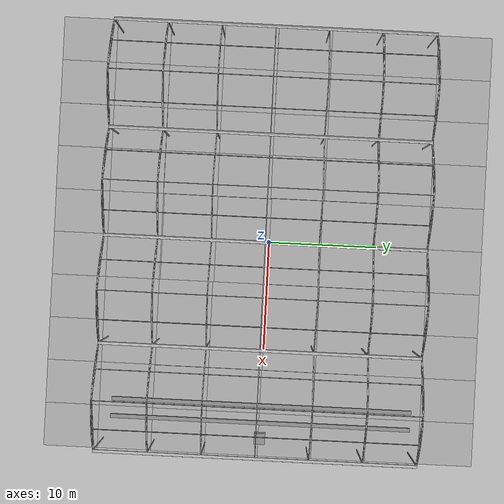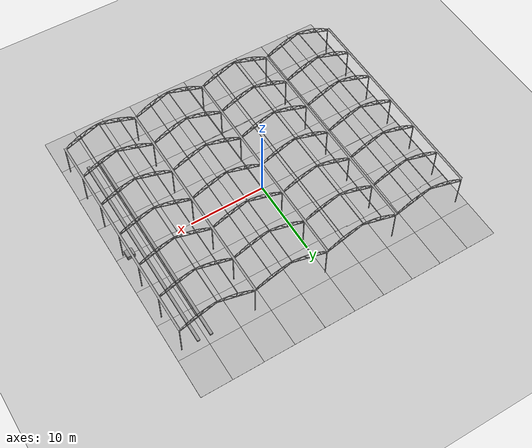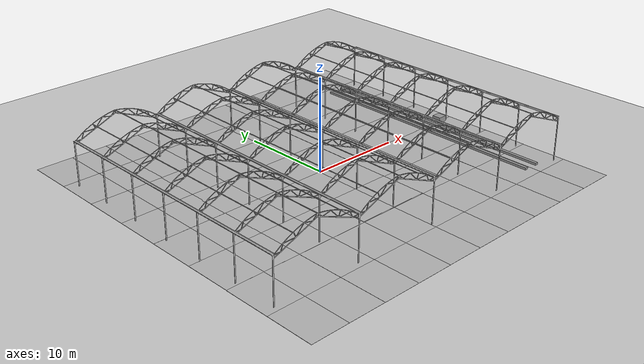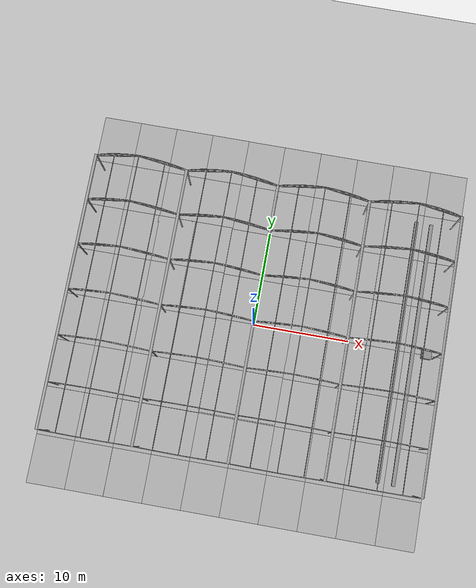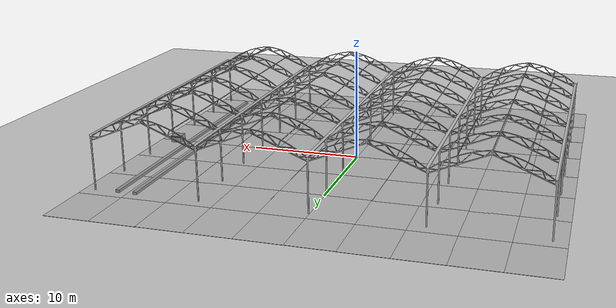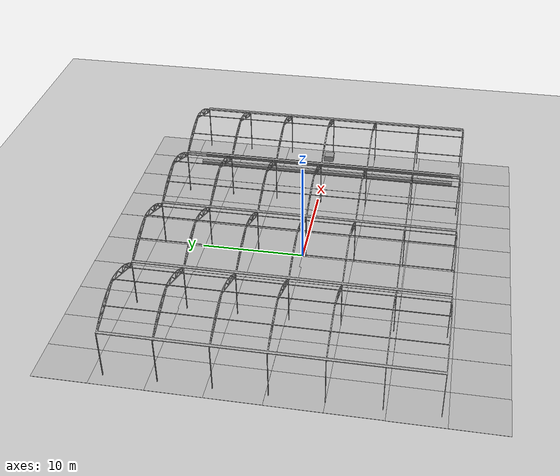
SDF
<sdf version="1.6">
 <world name="default">
  <light name="sun" type="directional">
   <pose>0 0 10 0 -0 0</pose>
   <diffuse>0.8 0.8 0.8 1</diffuse>
   <specular>0.2 0.2 0.2 1</specular>
   <attenuation>
    <range>1000</range>
    <constant>0.9</constant>
    <linear>0.01</linear>
    <quadratic>0.001</quadratic>
   </attenuation>
   <direction>-0.5 0.1 -0.9</direction>
  </light>
  <model name="ground_plane">
   <static>1</static>
   <link name="link">
    <collision name="collision">
     <geometry><plane><normal>0 0 1</normal><size>100 100</size></plane></geometry>
     <surface>
      <contact><collide_bitmask>65535</collide_bitmask></contact>
      <friction><ode><mu>100</mu><mu2>50</mu2></ode></friction>
     </surface>
    </collision>
    <visual name="visual">
     <cast_shadows>0</cast_shadows>
     <geometry><plane><normal>0 0 1</normal><size>100 100</size></plane></geometry>
     <material>
      <script><uri>file://media/materials/scripts/gazebo.material</uri><name>Gazebo/Grey</name></script>
     </material>
    </visual>
   </link>
  </model>
  <gravity>0 0 -9.8</gravity>
  <magnetic_field>6e-06 2.3e-05 -4.2e-05</magnetic_field>
  <atmosphere type="adiabatic"/>
  <physics name="default_physics" default="0" type="ode">
   <max_step_size>0.001</max_step_size>
   <real_time_factor>1</real_time_factor>
   <real_time_update_rate>1000</real_time_update_rate>
  </physics>
  <scene><ambient>0.4 0.4 0.4 1</ambient><background>0.7 0.7 0.7 1</background><shadows>1</shadows></scene>
  <audio><device>default</device></audio>
  <spherical_coordinates>
   <surface_model>EARTH_WGS84</surface_model>
   <latitude_deg>0</latitude_deg>
   <longitude_deg>0</longitude_deg>
   <elevation>0</elevation>
   <heading_deg>0</heading_deg>
  </spherical_coordinates>
  <model name="greenhouse">
   <static>1</static>
   <link name="link">
    <collision name="collision">
     <geometry>
      <mesh><scale>0.05 0.05 0.05</scale><uri>model://greenhouse/meshes/greenhouse.dae</uri></mesh>
     </geometry>
    </collision>
    <visual name="visual">
     <geometry>
      <mesh><scale>0.03 0.03 0.03</scale><uri>model://greenhouse/meshes/greenhouse.dae</uri></mesh>
     </geometry>
    </visual>
   </link>
   <pose>-24.6321 -23.8938 0 0 -0 0</pose>
  </model>
  <model name="mud_box_2">
   <static>1</static>
   <link name="link">
    <collision name="collision"><geometry><box><size>8 10 0.02</size></box></geometry></collision>
    <visual name="visual_1">
     <pose>-2 2.5 0 0 -0 0</pose>
     <cast_shadows>0</cast_shadows>
     <geometry><box><size>4 5 0.02</size></box></geometry>
     <material>
      <script>
       <uri>model://mud_box/materials/scripts</uri>
       <uri>model://mud_box/materials/textures</uri>
       <name>vrc/mud</name>
      </script>
     </material>
    </visual>
    <visual name="visual_2">
     <pose>2 2.5 0 0 -0 0</pose>
     <cast_shadows>0</cast_shadows>
     <geometry><box><size>4 5 0.02</size></box></geometry>
     <material>
      <script>
       <uri>model://mud_box/materials/scripts</uri>
       <uri>model://mud_box/materials/textures</uri>
       <name>vrc/mud</name>
      </script>
     </material>
    </visual>
    <visual name="visual_3">
     <pose>2 -2.5 0 0 -0 0</pose>
     <cast_shadows>0</cast_shadows>
     <geometry><box><size>4 5 0.02</size></box></geometry>
     <material>
      <script>
       <uri>model://mud_box/materials/scripts</uri>
       <uri>model://mud_box/materials/textures</uri>
       <name>vrc/mud</name>
      </script>
     </material>
    </visual>
    <visual name="visual_4">
     <pose>-2 -2.5 0 0 -0 0</pose>
     <cast_shadows>0</cast_shadows>
     <geometry><box><size>4 5 0.02</size></box></geometry>
     <material>
      <script>
       <uri>model://mud_box/materials/scripts</uri>
       <uri>model://mud_box/materials/textures</uri>
       <name>vrc/mud</name>
      </script>
     </material>
    </visual>
   </link>
   <pose>15.95 14.8768 0 0 -0 0</pose>
  </model>
  <model name="mud_box_2_clone">
   <static>1</static>
   <link name="link">
    <collision name="collision"><geometry><box><size>8 10 0.02</size></box></geometry></collision>
    <visual name="visual_1">
     <pose>-2 2.5 0 0 -0 0</pose>
     <cast_shadows>0</cast_shadows>
     <geometry><box><size>4 5 0.02</size></box></geometry>
     <material>
      <script>
       <uri>model://mud_box/materials/scripts</uri>
       <uri>model://mud_box/materials/textures</uri>
       <name>vrc/mud</name>
      </script>
     </material>
    </visual>
    <visual name="visual_2">
     <pose>2 2.5 0 0 -0 0</pose>
     <cast_shadows>0</cast_shadows>
     <geometry><box><size>4 5 0.02</size></box></geometry>
     <material>
      <script>
       <uri>model://mud_box/materials/scripts</uri>
       <uri>model://mud_box/materials/textures</uri>
       <name>vrc/mud</name>
      </script>
     </material>
    </visual>
    <visual name="visual_3">
     <pose>2 -2.5 0 0 -0 0</pose>
     <cast_shadows>0</cast_shadows>
     <geometry><box><size>4 5 0.02</size></box></geometry>
     <material>
      <script>
       <uri>model://mud_box/materials/scripts</uri>
       <uri>model://mud_box/materials/textures</uri>
       <name>vrc/mud</name>
      </script>
     </material>
    </visual>
    <visual name="visual_4">
     <pose>-2 -2.5 0 0 -0 0</pose>
     <cast_shadows>0</cast_shadows>
     <geometry><box><size>4 5 0.02</size></box></geometry>
     <material>
      <script>
       <uri>model://mud_box/materials/scripts</uri>
       <uri>model://mud_box/materials/textures</uri>
       <name>vrc/mud</name>
      </script>
     </material>
    </visual>
   </link>
   <pose>7.94862 14.8561 0 0 -0 0</pose>
  </model>
  <model name="mud_box_2_clone_0">
   <static>1</static>
   <link name="link">
    <collision name="collision"><geometry><box><size>8 10 0.02</size></box></geometry></collision>
    <visual name="visual_1">
     <pose>-2 2.5 0 0 -0 0</pose>
     <cast_shadows>0</cast_shadows>
     <geometry><box><size>4 5 0.02</size></box></geometry>
     <material>
      <script>
       <uri>model://mud_box/materials/scripts</uri>
       <uri>model://mud_box/materials/textures</uri>
       <name>vrc/mud</name>
      </script>
     </material>
    </visual>
    <visual name="visual_2">
     <pose>2 2.5 0 0 -0 0</pose>
     <cast_shadows>0</cast_shadows>
     <geometry><box><size>4 5 0.02</size></box></geometry>
     <material>
      <script>
       <uri>model://mud_box/materials/scripts</uri>
       <uri>model://mud_box/materials/textures</uri>
       <name>vrc/mud</name>
      </script>
     </material>
    </visual>
    <visual name="visual_3">
     <pose>2 -2.5 0 0 -0 0</pose>
     <cast_shadows>0</cast_shadows>
     <geometry><box><size>4 5 0.02</size></box></geometry>
     <material>
      <script>
       <uri>model://mud_box/materials/scripts</uri>
       <uri>model://mud_box/materials/textures</uri>
       <name>vrc/mud</name>
      </script>
     </material>
    </visual>
    <visual name="visual_4">
     <pose>-2 -2.5 0 0 -0 0</pose>
     <cast_shadows>0</cast_shadows>
     <geometry><box><size>4 5 0.02</size></box></geometry>
     <material>
      <script>
       <uri>model://mud_box/materials/scripts</uri>
       <uri>model://mud_box/materials/textures</uri>
       <name>vrc/mud</name>
      </script>
     </material>
    </visual>
   </link>
   <pose>-0.053733 14.862 0 0 -0 0</pose>
  </model>
  <model name="mud_box_2_clone_1">
   <static>1</static>
   <link name="link">
    <collision name="collision"><geometry><box><size>8 10 0.02</size></box></geometry></collision>
    <visual name="visual_1">
     <pose>-2 2.5 0 0 -0 0</pose>
     <cast_shadows>0</cast_shadows>
     <geometry><box><size>4 5 0.02</size></box></geometry>
     <material>
      <script>
       <uri>model://mud_box/materials/scripts</uri>
       <uri>model://mud_box/materials/textures</uri>
       <name>vrc/mud</name>
      </script>
     </material>
    </visual>
    <visual name="visual_2">
     <pose>2 2.5 0 0 -0 0</pose>
     <cast_shadows>0</cast_shadows>
     <geometry><box><size>4 5 0.02</size></box></geometry>
     <material>
      <script>
       <uri>model://mud_box/materials/scripts</uri>
       <uri>model://mud_box/materials/textures</uri>
       <name>vrc/mud</name>
      </script>
     </material>
    </visual>
    <visual name="visual_3">
     <pose>2 -2.5 0 0 -0 0</pose>
     <cast_shadows>0</cast_shadows>
     <geometry><box><size>4 5 0.02</size></box></geometry>
     <material>
      <script>
       <uri>model://mud_box/materials/scripts</uri>
       <uri>model://mud_box/materials/textures</uri>
       <name>vrc/mud</name>
      </script>
     </material>
    </visual>
    <visual name="visual_4">
     <pose>-2 -2.5 0 0 -0 0</pose>
     <cast_shadows>0</cast_shadows>
     <geometry><box><size>4 5 0.02</size></box></geometry>
     <material>
      <script>
       <uri>model://mud_box/materials/scripts</uri>
       <uri>model://mud_box/materials/textures</uri>
       <name>vrc/mud</name>
      </script>
     </material>
    </visual>
   </link>
   <pose>-8.0478 14.8839 0 0 -0 0</pose>
  </model>
  <model name="mud_box_2_clone_2">
   <static>1</static>
   <link name="link">
    <collision name="collision"><geometry><box><size>8 10 0.02</size></box></geometry></collision>
    <visual name="visual_1">
     <pose>-2 2.5 0 0 -0 0</pose>
     <cast_shadows>0</cast_shadows>
     <geometry><box><size>4 5 0.02</size></box></geometry>
     <material>
      <script>
       <uri>model://mud_box/materials/scripts</uri>
       <uri>model://mud_box/materials/textures</uri>
       <name>vrc/mud</name>
      </script>
     </material>
    </visual>
    <visual name="visual_2">
     <pose>2 2.5 0 0 -0 0</pose>
     <cast_shadows>0</cast_shadows>
     <geometry><box><size>4 5 0.02</size></box></geometry>
     <material>
      <script>
       <uri>model://mud_box/materials/scripts</uri>
       <uri>model://mud_box/materials/textures</uri>
       <name>vrc/mud</name>
      </script>
     </material>
    </visual>
    <visual name="visual_3">
     <pose>2 -2.5 0 0 -0 0</pose>
     <cast_shadows>0</cast_shadows>
     <geometry><box><size>4 5 0.02</size></box></geometry>
     <material>
      <script>
       <uri>model://mud_box/materials/scripts</uri>
       <uri>model://mud_box/materials/textures</uri>
       <name>vrc/mud</name>
      </script>
     </material>
    </visual>
    <visual name="visual_4">
     <pose>-2 -2.5 0 0 -0 0</pose>
     <cast_shadows>0</cast_shadows>
     <geometry><box><size>4 5 0.02</size></box></geometry>
     <material>
      <script>
       <uri>model://mud_box/materials/scripts</uri>
       <uri>model://mud_box/materials/textures</uri>
       <name>vrc/mud</name>
      </script>
     </material>
    </visual>
   </link>
   <pose>-16.0172 14.8764 0 0 -0 0</pose>
  </model>
  <model name="mud_box_2_clone_3">
   <static>1</static>
   <link name="link">
    <collision name="collision"><geometry><box><size>8 10 0.02</size></box></geometry></collision>
    <visual name="visual_1">
     <pose>-2 2.5 0 0 -0 0</pose>
     <cast_shadows>0</cast_shadows>
     <geometry><box><size>4 5 0.02</size></box></geometry>
     <material>
      <script>
       <uri>model://mud_box/materials/scripts</uri>
       <uri>model://mud_box/materials/textures</uri>
       <name>vrc/mud</name>
      </script>
     </material>
    </visual>
    <visual name="visual_2">
     <pose>2 2.5 0 0 -0 0</pose>
     <cast_shadows>0</cast_shadows>
     <geometry><box><size>4 5 0.02</size></box></geometry>
     <material>
      <script>
       <uri>model://mud_box/materials/scripts</uri>
       <uri>model://mud_box/materials/textures</uri>
       <name>vrc/mud</name>
      </script>
     </material>
    </visual>
    <visual name="visual_3">
     <pose>2 -2.5 0 0 -0 0</pose>
     <cast_shadows>0</cast_shadows>
     <geometry><box><size>4 5 0.02</size></box></geometry>
     <material>
      <script>
       <uri>model://mud_box/materials/scripts</uri>
       <uri>model://mud_box/materials/textures</uri>
       <name>vrc/mud</name>
      </script>
     </material>
    </visual>
    <visual name="visual_4">
     <pose>-2 -2.5 0 0 -0 0</pose>
     <cast_shadows>0</cast_shadows>
     <geometry><box><size>4 5 0.02</size></box></geometry>
     <material>
      <script>
       <uri>model://mud_box/materials/scripts</uri>
       <uri>model://mud_box/materials/textures</uri>
       <name>vrc/mud</name>
      </script>
     </material>
    </visual>
   </link>
   <pose>15.951 4.89846 0 0 -0 0</pose>
  </model>
  <model name="mud_box_2_clone_4">
   <static>1</static>
   <link name="link">
    <collision name="collision"><geometry><box><size>8 10 0.02</size></box></geometry></collision>
    <visual name="visual_1">
     <pose>-2 2.5 0 0 -0 0</pose>
     <cast_shadows>0</cast_shadows>
     <geometry><box><size>4 5 0.02</size></box></geometry>
     <material>
      <script>
       <uri>model://mud_box/materials/scripts</uri>
       <uri>model://mud_box/materials/textures</uri>
       <name>vrc/mud</name>
      </script>
     </material>
    </visual>
    <visual name="visual_2">
     <pose>2 2.5 0 0 -0 0</pose>
     <cast_shadows>0</cast_shadows>
     <geometry><box><size>4 5 0.02</size></box></geometry>
     <material>
      <script>
       <uri>model://mud_box/materials/scripts</uri>
       <uri>model://mud_box/materials/textures</uri>
       <name>vrc/mud</name>
      </script>
     </material>
    </visual>
    <visual name="visual_3">
     <pose>2 -2.5 0 0 -0 0</pose>
     <cast_shadows>0</cast_shadows>
     <geometry><box><size>4 5 0.02</size></box></geometry>
     <material>
      <script>
       <uri>model://mud_box/materials/scripts</uri>
       <uri>model://mud_box/materials/textures</uri>
       <name>vrc/mud</name>
      </script>
     </material>
    </visual>
    <visual name="visual_4">
     <pose>-2 -2.5 0 0 -0 0</pose>
     <cast_shadows>0</cast_shadows>
     <geometry><box><size>4 5 0.02</size></box></geometry>
     <material>
      <script>
       <uri>model://mud_box/materials/scripts</uri>
       <uri>model://mud_box/materials/textures</uri>
       <name>vrc/mud</name>
      </script>
     </material>
    </visual>
   </link>
   <pose>15.9437 -5.04402 0 0 -0 0</pose>
  </model>
  <model name="mud_box_2_clone_5">
   <static>1</static>
   <link name="link">
    <collision name="collision"><geometry><box><size>8 10 0.02</size></box></geometry></collision>
    <visual name="visual_1">
     <pose>-2 2.5 0 0 -0 0</pose>
     <cast_shadows>0</cast_shadows>
     <geometry><box><size>4 5 0.02</size></box></geometry>
     <material>
      <script>
       <uri>model://mud_box/materials/scripts</uri>
       <uri>model://mud_box/materials/textures</uri>
       <name>vrc/mud</name>
      </script>
     </material>
    </visual>
    <visual name="visual_2">
     <pose>2 2.5 0 0 -0 0</pose>
     <cast_shadows>0</cast_shadows>
     <geometry><box><size>4 5 0.02</size></box></geometry>
     <material>
      <script>
       <uri>model://mud_box/materials/scripts</uri>
       <uri>model://mud_box/materials/textures</uri>
       <name>vrc/mud</name>
      </script>
     </material>
    </visual>
    <visual name="visual_3">
     <pose>2 -2.5 0 0 -0 0</pose>
     <cast_shadows>0</cast_shadows>
     <geometry><box><size>4 5 0.02</size></box></geometry>
     <material>
      <script>
       <uri>model://mud_box/materials/scripts</uri>
       <uri>model://mud_box/materials/textures</uri>
       <name>vrc/mud</name>
      </script>
     </material>
    </visual>
    <visual name="visual_4">
     <pose>-2 -2.5 0 0 -0 0</pose>
     <cast_shadows>0</cast_shadows>
     <geometry><box><size>4 5 0.02</size></box></geometry>
     <material>
      <script>
       <uri>model://mud_box/materials/scripts</uri>
       <uri>model://mud_box/materials/textures</uri>
       <name>vrc/mud</name>
      </script>
     </material>
    </visual>
   </link>
   <pose>15.9026 -15.0305 0 0 -0 0</pose>
  </model>
  <model name="mud_box_2_clone_6">
   <static>1</static>
   <link name="link">
    <collision name="collision"><geometry><box><size>8 10 0.02</size></box></geometry></collision>
    <visual name="visual_1">
     <pose>-2 2.5 0 0 -0 0</pose>
     <cast_shadows>0</cast_shadows>
     <geometry><box><size>4 5 0.02</size></box></geometry>
     <material>
      <script>
       <uri>model://mud_box/materials/scripts</uri>
       <uri>model://mud_box/materials/textures</uri>
       <name>vrc/mud</name>
      </script>
     </material>
    </visual>
    <visual name="visual_2">
     <pose>2 2.5 0 0 -0 0</pose>
     <cast_shadows>0</cast_shadows>
     <geometry><box><size>4 5 0.02</size></box></geometry>
     <material>
      <script>
       <uri>model://mud_box/materials/scripts</uri>
       <uri>model://mud_box/materials/textures</uri>
       <name>vrc/mud</name>
      </script>
     </material>
    </visual>
    <visual name="visual_3">
     <pose>2 -2.5 0 0 -0 0</pose>
     <cast_shadows>0</cast_shadows>
     <geometry><box><size>4 5 0.02</size></box></geometry>
     <material>
      <script>
       <uri>model://mud_box/materials/scripts</uri>
       <uri>model://mud_box/materials/textures</uri>
       <name>vrc/mud</name>
      </script>
     </material>
    </visual>
    <visual name="visual_4">
     <pose>-2 -2.5 0 0 -0 0</pose>
     <cast_shadows>0</cast_shadows>
     <geometry><box><size>4 5 0.02</size></box></geometry>
     <material>
      <script>
       <uri>model://mud_box/materials/scripts</uri>
       <uri>model://mud_box/materials/textures</uri>
       <name>vrc/mud</name>
      </script>
     </material>
    </visual>
   </link>
   <pose>7.92837 -15.034 0 0 -0 0</pose>
  </model>
  <model name="mud_box_2_clone_7">
   <static>1</static>
   <link name="link">
    <collision name="collision"><geometry><box><size>8 10 0.02</size></box></geometry></collision>
    <visual name="visual_1">
     <pose>-2 2.5 0 0 -0 0</pose>
     <cast_shadows>0</cast_shadows>
     <geometry><box><size>4 5 0.02</size></box></geometry>
     <material>
      <script>
       <uri>model://mud_box/materials/scripts</uri>
       <uri>model://mud_box/materials/textures</uri>
       <name>vrc/mud</name>
      </script>
     </material>
    </visual>
    <visual name="visual_2">
     <pose>2 2.5 0 0 -0 0</pose>
     <cast_shadows>0</cast_shadows>
     <geometry><box><size>4 5 0.02</size></box></geometry>
     <material>
      <script>
       <uri>model://mud_box/materials/scripts</uri>
       <uri>model://mud_box/materials/textures</uri>
       <name>vrc/mud</name>
      </script>
     </material>
    </visual>
    <visual name="visual_3">
     <pose>2 -2.5 0 0 -0 0</pose>
     <cast_shadows>0</cast_shadows>
     <geometry><box><size>4 5 0.02</size></box></geometry>
     <material>
      <script>
       <uri>model://mud_box/materials/scripts</uri>
       <uri>model://mud_box/materials/textures</uri>
       <name>vrc/mud</name>
      </script>
     </material>
    </visual>
    <visual name="visual_4">
     <pose>-2 -2.5 0 0 -0 0</pose>
     <cast_shadows>0</cast_shadows>
     <geometry><box><size>4 5 0.02</size></box></geometry>
     <material>
      <script>
       <uri>model://mud_box/materials/scripts</uri>
       <uri>model://mud_box/materials/textures</uri>
       <name>vrc/mud</name>
      </script>
     </material>
    </visual>
   </link>
   <pose>-0.060925 -15.032 0 0 -0 0</pose>
  </model>
  <model name="mud_box_2_clone_8">
   <static>1</static>
   <link name="link">
    <collision name="collision"><geometry><box><size>8 10 0.02</size></box></geometry></collision>
    <visual name="visual_1">
     <pose>-2 2.5 0 0 -0 0</pose>
     <cast_shadows>0</cast_shadows>
     <geometry><box><size>4 5 0.02</size></box></geometry>
     <material>
      <script>
       <uri>model://mud_box/materials/scripts</uri>
       <uri>model://mud_box/materials/textures</uri>
       <name>vrc/mud</name>
      </script>
     </material>
    </visual>
    <visual name="visual_2">
     <pose>2 2.5 0 0 -0 0</pose>
     <cast_shadows>0</cast_shadows>
     <geometry><box><size>4 5 0.02</size></box></geometry>
     <material>
      <script>
       <uri>model://mud_box/materials/scripts</uri>
       <uri>model://mud_box/materials/textures</uri>
       <name>vrc/mud</name>
      </script>
     </material>
    </visual>
    <visual name="visual_3">
     <pose>2 -2.5 0 0 -0 0</pose>
     <cast_shadows>0</cast_shadows>
     <geometry><box><size>4 5 0.02</size></box></geometry>
     <material>
      <script>
       <uri>model://mud_box/materials/scripts</uri>
       <uri>model://mud_box/materials/textures</uri>
       <name>vrc/mud</name>
      </script>
     </material>
    </visual>
    <visual name="visual_4">
     <pose>-2 -2.5 0 0 -0 0</pose>
     <cast_shadows>0</cast_shadows>
     <geometry><box><size>4 5 0.02</size></box></geometry>
     <material>
      <script>
       <uri>model://mud_box/materials/scripts</uri>
       <uri>model://mud_box/materials/textures</uri>
       <name>vrc/mud</name>
      </script>
     </material>
    </visual>
   </link>
   <pose>-8.05527 -15.0417 0 0 -0 0</pose>
  </model>
  <model name="mud_box_2_clone_9">
   <static>1</static>
   <link name="link">
    <collision name="collision"><geometry><box><size>8 10 0.02</size></box></geometry></collision>
    <visual name="visual_1">
     <pose>-2 2.5 0 0 -0 0</pose>
     <cast_shadows>0</cast_shadows>
     <geometry><box><size>4 5 0.02</size></box></geometry>
     <material>
      <script>
       <uri>model://mud_box/materials/scripts</uri>
       <uri>model://mud_box/materials/textures</uri>
       <name>vrc/mud</name>
      </script>
     </material>
    </visual>
    <visual name="visual_2">
     <pose>2 2.5 0 0 -0 0</pose>
     <cast_shadows>0</cast_shadows>
     <geometry><box><size>4 5 0.02</size></box></geometry>
     <material>
      <script>
       <uri>model://mud_box/materials/scripts</uri>
       <uri>model://mud_box/materials/textures</uri>
       <name>vrc/mud</name>
      </script>
     </material>
    </visual>
    <visual name="visual_3">
     <pose>2 -2.5 0 0 -0 0</pose>
     <cast_shadows>0</cast_shadows>
     <geometry><box><size>4 5 0.02</size></box></geometry>
     <material>
      <script>
       <uri>model://mud_box/materials/scripts</uri>
       <uri>model://mud_box/materials/textures</uri>
       <name>vrc/mud</name>
      </script>
     </material>
    </visual>
    <visual name="visual_4">
     <pose>-2 -2.5 0 0 -0 0</pose>
     <cast_shadows>0</cast_shadows>
     <geometry><box><size>4 5 0.02</size></box></geometry>
     <material>
      <script>
       <uri>model://mud_box/materials/scripts</uri>
       <uri>model://mud_box/materials/textures</uri>
       <name>vrc/mud</name>
      </script>
     </material>
    </visual>
   </link>
   <pose>-16.0602 -15.033 0 0 -0 0</pose>
  </model>
  <model name="mud_box_2_clone_10">
   <static>1</static>
   <link name="link">
    <collision name="collision"><geometry><box><size>8 10 0.02</size></box></geometry></collision>
    <visual name="visual_1">
     <pose>-2 2.5 0 0 -0 0</pose>
     <cast_shadows>0</cast_shadows>
     <geometry><box><size>4 5 0.02</size></box></geometry>
     <material>
      <script>
       <uri>model://mud_box/materials/scripts</uri>
       <uri>model://mud_box/materials/textures</uri>
       <name>vrc/mud</name>
      </script>
     </material>
    </visual>
    <visual name="visual_2">
     <pose>2 2.5 0 0 -0 0</pose>
     <cast_shadows>0</cast_shadows>
     <geometry><box><size>4 5 0.02</size></box></geometry>
     <material>
      <script>
       <uri>model://mud_box/materials/scripts</uri>
       <uri>model://mud_box/materials/textures</uri>
       <name>vrc/mud</name>
      </script>
     </material>
    </visual>
    <visual name="visual_3">
     <pose>2 -2.5 0 0 -0 0</pose>
     <cast_shadows>0</cast_shadows>
     <geometry><box><size>4 5 0.02</size></box></geometry>
     <material>
      <script>
       <uri>model://mud_box/materials/scripts</uri>
       <uri>model://mud_box/materials/textures</uri>
       <name>vrc/mud</name>
      </script>
     </material>
    </visual>
    <visual name="visual_4">
     <pose>-2 -2.5 0 0 -0 0</pose>
     <cast_shadows>0</cast_shadows>
     <geometry><box><size>4 5 0.02</size></box></geometry>
     <material>
      <script>
       <uri>model://mud_box/materials/scripts</uri>
       <uri>model://mud_box/materials/textures</uri>
       <name>vrc/mud</name>
      </script>
     </material>
    </visual>
   </link>
   <pose>-16.037 -5.02979 0 0 -0 0</pose>
  </model>
  <model name="mud_box_2_clone_11">
   <static>1</static>
   <link name="link">
    <collision name="collision"><geometry><box><size>8 10 0.02</size></box></geometry></collision>
    <visual name="visual_1">
     <pose>-2 2.5 0 0 -0 0</pose>
     <cast_shadows>0</cast_shadows>
     <geometry><box><size>4 5 0.02</size></box></geometry>
     <material>
      <script>
       <uri>model://mud_box/materials/scripts</uri>
       <uri>model://mud_box/materials/textures</uri>
       <name>vrc/mud</name>
      </script>
     </material>
    </visual>
    <visual name="visual_2">
     <pose>2 2.5 0 0 -0 0</pose>
     <cast_shadows>0</cast_shadows>
     <geometry><box><size>4 5 0.02</size></box></geometry>
     <material>
      <script>
       <uri>model://mud_box/materials/scripts</uri>
       <uri>model://mud_box/materials/textures</uri>
       <name>vrc/mud</name>
      </script>
     </material>
    </visual>
    <visual name="visual_3">
     <pose>2 -2.5 0 0 -0 0</pose>
     <cast_shadows>0</cast_shadows>
     <geometry><box><size>4 5 0.02</size></box></geometry>
     <material>
      <script>
       <uri>model://mud_box/materials/scripts</uri>
       <uri>model://mud_box/materials/textures</uri>
       <name>vrc/mud</name>
      </script>
     </material>
    </visual>
    <visual name="visual_4">
     <pose>-2 -2.5 0 0 -0 0</pose>
     <cast_shadows>0</cast_shadows>
     <geometry><box><size>4 5 0.02</size></box></geometry>
     <material>
      <script>
       <uri>model://mud_box/materials/scripts</uri>
       <uri>model://mud_box/materials/textures</uri>
       <name>vrc/mud</name>
      </script>
     </material>
    </visual>
   </link>
   <pose>-16.0272 4.97532 0 0 -0 0</pose>
  </model>
  <model name="mud_box_2_clone_12">
   <static>1</static>
   <link name="link">
    <collision name="collision"><geometry><box><size>8 10 0.02</size></box></geometry></collision>
    <visual name="visual_1">
     <pose>-2 2.5 0 0 -0 0</pose>
     <cast_shadows>0</cast_shadows>
     <geometry><box><size>4 5 0.02</size></box></geometry>
     <material>
      <script>
       <uri>model://mud_box/materials/scripts</uri>
       <uri>model://mud_box/materials/textures</uri>
       <name>vrc/mud</name>
      </script>
     </material>
    </visual>
    <visual name="visual_2">
     <pose>2 2.5 0 0 -0 0</pose>
     <cast_shadows>0</cast_shadows>
     <geometry><box><size>4 5 0.02</size></box></geometry>
     <material>
      <script>
       <uri>model://mud_box/materials/scripts</uri>
       <uri>model://mud_box/materials/textures</uri>
       <name>vrc/mud</name>
      </script>
     </material>
    </visual>
    <visual name="visual_3">
     <pose>2 -2.5 0 0 -0 0</pose>
     <cast_shadows>0</cast_shadows>
     <geometry><box><size>4 5 0.02</size></box></geometry>
     <material>
      <script>
       <uri>model://mud_box/materials/scripts</uri>
       <uri>model://mud_box/materials/textures</uri>
       <name>vrc/mud</name>
      </script>
     </material>
    </visual>
    <visual name="visual_4">
     <pose>-2 -2.5 0 0 -0 0</pose>
     <cast_shadows>0</cast_shadows>
     <geometry><box><size>4 5 0.02</size></box></geometry>
     <material>
      <script>
       <uri>model://mud_box/materials/scripts</uri>
       <uri>model://mud_box/materials/textures</uri>
       <name>vrc/mud</name>
      </script>
     </material>
    </visual>
   </link>
   <pose>-8.1226 4.98139 0 0 -0 0</pose>
  </model>
  <model name="mud_box_2_clone_13">
   <static>1</static>
   <link name="link">
    <collision name="collision"><geometry><box><size>8 10 0.02</size></box></geometry></collision>
    <visual name="visual_1">
     <pose>-2 2.5 0 0 -0 0</pose>
     <cast_shadows>0</cast_shadows>
     <geometry><box><size>4 5 0.02</size></box></geometry>
     <material>
      <script>
       <uri>model://mud_box/materials/scripts</uri>
       <uri>model://mud_box/materials/textures</uri>
       <name>vrc/mud</name>
      </script>
     </material>
    </visual>
    <visual name="visual_2">
     <pose>2 2.5 0 0 -0 0</pose>
     <cast_shadows>0</cast_shadows>
     <geometry><box><size>4 5 0.02</size></box></geometry>
     <material>
      <script>
       <uri>model://mud_box/materials/scripts</uri>
       <uri>model://mud_box/materials/textures</uri>
       <name>vrc/mud</name>
      </script>
     </material>
    </visual>
    <visual name="visual_3">
     <pose>2 -2.5 0 0 -0 0</pose>
     <cast_shadows>0</cast_shadows>
     <geometry><box><size>4 5 0.02</size></box></geometry>
     <material>
      <script>
       <uri>model://mud_box/materials/scripts</uri>
       <uri>model://mud_box/materials/textures</uri>
       <name>vrc/mud</name>
      </script>
     </material>
    </visual>
    <visual name="visual_4">
     <pose>-2 -2.5 0 0 -0 0</pose>
     <cast_shadows>0</cast_shadows>
     <geometry><box><size>4 5 0.02</size></box></geometry>
     <material>
      <script>
       <uri>model://mud_box/materials/scripts</uri>
       <uri>model://mud_box/materials/textures</uri>
       <name>vrc/mud</name>
      </script>
     </material>
    </visual>
   </link>
   <pose>-8.07337 -5.01851 0 0 -0 0</pose>
  </model>
  <model name="mud_box_2_clone_14">
   <static>1</static>
   <link name="link">
    <collision name="collision"><geometry><box><size>8 10 0.02</size></box></geometry></collision>
    <visual name="visual_1">
     <pose>-2 2.5 0 0 -0 0</pose>
     <cast_shadows>0</cast_shadows>
     <geometry><box><size>4 5 0.02</size></box></geometry>
     <material>
      <script>
       <uri>model://mud_box/materials/scripts</uri>
       <uri>model://mud_box/materials/textures</uri>
       <name>vrc/mud</name>
      </script>
     </material>
    </visual>
    <visual name="visual_2">
     <pose>2 2.5 0 0 -0 0</pose>
     <cast_shadows>0</cast_shadows>
     <geometry><box><size>4 5 0.02</size></box></geometry>
     <material>
      <script>
       <uri>model://mud_box/materials/scripts</uri>
       <uri>model://mud_box/materials/textures</uri>
       <name>vrc/mud</name>
      </script>
     </material>
    </visual>
    <visual name="visual_3">
     <pose>2 -2.5 0 0 -0 0</pose>
     <cast_shadows>0</cast_shadows>
     <geometry><box><size>4 5 0.02</size></box></geometry>
     <material>
      <script>
       <uri>model://mud_box/materials/scripts</uri>
       <uri>model://mud_box/materials/textures</uri>
       <name>vrc/mud</name>
      </script>
     </material>
    </visual>
    <visual name="visual_4">
     <pose>-2 -2.5 0 0 -0 0</pose>
     <cast_shadows>0</cast_shadows>
     <geometry><box><size>4 5 0.02</size></box></geometry>
     <material>
      <script>
       <uri>model://mud_box/materials/scripts</uri>
       <uri>model://mud_box/materials/textures</uri>
       <name>vrc/mud</name>
      </script>
     </material>
    </visual>
   </link>
   <pose>7.92131 -5.03606 0 0 -0 0</pose>
  </model>
  <model name="mud_box_2_clone_15">
   <static>1</static>
   <link name="link">
    <collision name="collision"><geometry><box><size>8 10 0.02</size></box></geometry></collision>
    <visual name="visual_1">
     <pose>-2 2.5 0 0 -0 0</pose>
     <cast_shadows>0</cast_shadows>
     <geometry><box><size>4 5 0.02</size></box></geometry>
     <material>
      <script>
       <uri>model://mud_box/materials/scripts</uri>
       <uri>model://mud_box/materials/textures</uri>
       <name>vrc/mud</name>
      </script>
     </material>
    </visual>
    <visual name="visual_2">
     <pose>2 2.5 0 0 -0 0</pose>
     <cast_shadows>0</cast_shadows>
     <geometry><box><size>4 5 0.02</size></box></geometry>
     <material>
      <script>
       <uri>model://mud_box/materials/scripts</uri>
       <uri>model://mud_box/materials/textures</uri>
       <name>vrc/mud</name>
      </script>
     </material>
    </visual>
    <visual name="visual_3">
     <pose>2 -2.5 0 0 -0 0</pose>
     <cast_shadows>0</cast_shadows>
     <geometry><box><size>4 5 0.02</size></box></geometry>
     <material>
      <script>
       <uri>model://mud_box/materials/scripts</uri>
       <uri>model://mud_box/materials/textures</uri>
       <name>vrc/mud</name>
      </script>
     </material>
    </visual>
    <visual name="visual_4">
     <pose>-2 -2.5 0 0 -0 0</pose>
     <cast_shadows>0</cast_shadows>
     <geometry><box><size>4 5 0.02</size></box></geometry>
     <material>
      <script>
       <uri>model://mud_box/materials/scripts</uri>
       <uri>model://mud_box/materials/textures</uri>
       <name>vrc/mud</name>
      </script>
     </material>
    </visual>
   </link>
   <pose>-0.044632 -4.93319 0 0 -0 0</pose>
  </model>
  <model name="mud_box_2_clone_16">
   <static>1</static>
   <link name="link">
    <collision name="collision"><geometry><box><size>8 10 0.02</size></box></geometry></collision>
    <visual name="visual_1">
     <pose>-2 2.5 0 0 -0 0</pose>
     <cast_shadows>0</cast_shadows>
     <geometry><box><size>4 5 0.02</size></box></geometry>
     <material>
      <script>
       <uri>model://mud_box/materials/scripts</uri>
       <uri>model://mud_box/materials/textures</uri>
       <name>vrc/mud</name>
      </script>
     </material>
    </visual>
    <visual name="visual_2">
     <pose>2 2.5 0 0 -0 0</pose>
     <cast_shadows>0</cast_shadows>
     <geometry><box><size>4 5 0.02</size></box></geometry>
     <material>
      <script>
       <uri>model://mud_box/materials/scripts</uri>
       <uri>model://mud_box/materials/textures</uri>
       <name>vrc/mud</name>
      </script>
     </material>
    </visual>
    <visual name="visual_3">
     <pose>2 -2.5 0 0 -0 0</pose>
     <cast_shadows>0</cast_shadows>
     <geometry><box><size>4 5 0.02</size></box></geometry>
     <material>
      <script>
       <uri>model://mud_box/materials/scripts</uri>
       <uri>model://mud_box/materials/textures</uri>
       <name>vrc/mud</name>
      </script>
     </material>
    </visual>
    <visual name="visual_4">
     <pose>-2 -2.5 0 0 -0 0</pose>
     <cast_shadows>0</cast_shadows>
     <geometry><box><size>4 5 0.02</size></box></geometry>
     <material>
      <script>
       <uri>model://mud_box/materials/scripts</uri>
       <uri>model://mud_box/materials/textures</uri>
       <name>vrc/mud</name>
      </script>
     </material>
    </visual>
   </link>
   <pose>7.93489 4.92736 0 0 -0 0</pose>
  </model>
  <model name="mud_box_2_clone_17">
   <static>1</static>
   <link name="link">
    <collision name="collision"><geometry><box><size>8 10 0.02</size></box></geometry></collision>
    <visual name="visual_1">
     <pose>-2 2.5 0 0 -0 0</pose>
     <cast_shadows>0</cast_shadows>
     <geometry><box><size>4 5 0.02</size></box></geometry>
     <material>
      <script>
       <uri>model://mud_box/materials/scripts</uri>
       <uri>model://mud_box/materials/textures</uri>
       <name>vrc/mud</name>
      </script>
     </material>
    </visual>
    <visual name="visual_2">
     <pose>2 2.5 0 0 -0 0</pose>
     <cast_shadows>0</cast_shadows>
     <geometry><box><size>4 5 0.02</size></box></geometry>
     <material>
      <script>
       <uri>model://mud_box/materials/scripts</uri>
       <uri>model://mud_box/materials/textures</uri>
       <name>vrc/mud</name>
      </script>
     </material>
    </visual>
    <visual name="visual_3">
     <pose>2 -2.5 0 0 -0 0</pose>
     <cast_shadows>0</cast_shadows>
     <geometry><box><size>4 5 0.02</size></box></geometry>
     <material>
      <script>
       <uri>model://mud_box/materials/scripts</uri>
       <uri>model://mud_box/materials/textures</uri>
       <name>vrc/mud</name>
      </script>
     </material>
    </visual>
    <visual name="visual_4">
     <pose>-2 -2.5 0 0 -0 0</pose>
     <cast_shadows>0</cast_shadows>
     <geometry><box><size>4 5 0.02</size></box></geometry>
     <material>
      <script>
       <uri>model://mud_box/materials/scripts</uri>
       <uri>model://mud_box/materials/textures</uri>
       <name>vrc/mud</name>
      </script>
     </material>
    </visual>
   </link>
   <pose>-0.092613 4.86457 0 0 -0 0</pose>
  </model>
  <model name="plant_base_clone">
   <link name="link">
    <inertial>
     <mass>1</mass>
     <inertia>
      <ixx>0.166667</ixx>
      <ixy>0</ixy>
      <ixz>0</ixz>
      <iyy>0.166667</iyy>
      <iyz>0</iyz>
      <izz>0.166667</izz>
     </inertia>
    </inertial>
    <visual name="visual">
     <geometry><box><size>1 0.999985 0.999999</size></box></geometry>
     <material>
      <script><name>Gazebo/Grey</name><uri>file://media/materials/scripts/gazebo.material</uri></script>
     </material>
    </visual>
    <collision name="collision">
     <geometry><box><size>1 0.999985 0.999999</size></box></geometry>
     <surface>
      <friction>
       <ode><mu>1</mu><mu2>1</mu2><fdir1>0 0 0</fdir1><slip1>0</slip1><slip2>0</slip2></ode>
       <torsional>
        <coefficient>1</coefficient>
        <patch_radius>0</patch_radius>
        <surface_radius>0</surface_radius>
        <use_patch_radius>1</use_patch_radius>
        <ode><slip>0</slip></ode>
       </torsional>
      </friction>
      <bounce><restitution_coefficient>0</restitution_coefficient><threshold>1e+06</threshold></bounce>
      <contact>
       <collide_without_contact>0</collide_without_contact>
       <collide_without_contact_bitmask>1</collide_without_contact_bitmask>
       <collide_bitmask>1</collide_bitmask>
       <ode>
        <soft_cfm>0</soft_cfm>
        <soft_erp>0.2</soft_erp>
        <kp>1e+13</kp>
        <kd>1</kd>
        <max_vel>0.01</max_vel>
        <min_depth>0</min_depth>
       </ode>
       <bullet>
        <split_impulse>1</split_impulse>
        <split_impulse_penetration_threshold>-0.01</split_impulse_penetration_threshold>
        <soft_cfm>0</soft_cfm>
        <soft_erp>0.2</soft_erp>
        <kp>1e+13</kp>
        <kd>1</kd>
       </bullet>
      </contact>
     </surface>
    </collision>
   </link>
   <static>1</static>
   <pose>18.2052 0.03441 0.134309 0 -0 0</pose>
  </model>
  <model name="plant_base_clone_clone">
   <link name="link">
    <inertial>
     <mass>1</mass>
     <inertia>
      <ixx>0.166667</ixx>
      <ixy>0</ixy>
      <ixz>0</ixz>
      <iyy>0.166667</iyy>
      <iyz>0</iyz>
      <izz>0.166667</izz>
     </inertia>
    </inertial>
    <visual name="visual">
     <geometry><box><size>0.359287 27.8593 0.235695</size></box></geometry>
     <material>
      <script><name>Gazebo/Grey</name><uri>file://media/materials/scripts/gazebo.material</uri></script>
     </material>
    </visual>
    <collision name="collision">
     <geometry><box><size>0.359287 27.8593 0.235695</size></box></geometry>
     <surface>
      <friction>
       <ode><mu>1</mu><mu2>1</mu2><fdir1>0 0 0</fdir1><slip1>0</slip1><slip2>0</slip2></ode>
       <torsional>
        <coefficient>1</coefficient>
        <patch_radius>0</patch_radius>
        <surface_radius>0</surface_radius>
        <use_patch_radius>1</use_patch_radius>
        <ode><slip>0</slip></ode>
       </torsional>
      </friction>
      <bounce><restitution_coefficient>0</restitution_coefficient><threshold>1e+06</threshold></bounce>
      <contact>
       <collide_without_contact>0</collide_without_contact>
       <collide_without_contact_bitmask>1</collide_without_contact_bitmask>
       <collide_bitmask>1</collide_bitmask>
       <ode>
        <soft_cfm>0</soft_cfm>
        <soft_erp>0.2</soft_erp>
        <kp>1e+13</kp>
        <kd>1</kd>
        <max_vel>0.01</max_vel>
        <min_depth>0</min_depth>
       </ode>
       <bullet>
        <split_impulse>1</split_impulse>
        <split_impulse_penetration_threshold>-0.01</split_impulse_penetration_threshold>
        <soft_cfm>0</soft_cfm>
        <soft_erp>0.2</soft_erp>
        <kp>1e+13</kp>
        <kd>1</kd>
       </bullet>
      </contact>
     </surface>
    </collision>
   </link>
   <static>1</static>
   <pose>16.8164 0.021924 0.134309 0 -0 0</pose>
  </model>
  <model name="plant_base_clone_clone_0">
   <link name="link">
    <inertial>
     <mass>1</mass>
     <inertia>
      <ixx>0.166667</ixx>
      <ixy>0</ixy>
      <ixz>0</ixz>
      <iyy>0.166667</iyy>
      <iyz>0</iyz>
      <izz>0.166667</izz>
     </inertia>
    </inertial>
    <visual name="visual">
     <geometry><box><size>0.359287 27.8593 0.235695</size></box></geometry>
     <material>
      <script><name>Gazebo/Grey</name><uri>file://media/materials/scripts/gazebo.material</uri></script>
     </material>
    </visual>
    <collision name="collision">
     <geometry><box><size>0.359287 27.8593 0.235695</size></box></geometry>
     <surface>
      <friction>
       <ode><mu>1</mu><mu2>1</mu2><fdir1>0 0 0</fdir1><slip1>0</slip1><slip2>0</slip2></ode>
       <torsional>
        <coefficient>1</coefficient>
        <patch_radius>0</patch_radius>
        <surface_radius>0</surface_radius>
        <use_patch_radius>1</use_patch_radius>
        <ode><slip>0</slip></ode>
       </torsional>
      </friction>
      <bounce><restitution_coefficient>0</restitution_coefficient><threshold>1e+06</threshold></bounce>
      <contact>
       <collide_without_contact>0</collide_without_contact>
       <collide_without_contact_bitmask>1</collide_without_contact_bitmask>
       <collide_bitmask>1</collide_bitmask>
       <ode>
        <soft_cfm>0</soft_cfm>
        <soft_erp>0.2</soft_erp>
        <kp>1e+13</kp>
        <kd>1</kd>
        <max_vel>0.01</max_vel>
        <min_depth>0</min_depth>
       </ode>
       <bullet>
        <split_impulse>1</split_impulse>
        <split_impulse_penetration_threshold>-0.01</split_impulse_penetration_threshold>
        <soft_cfm>0</soft_cfm>
        <soft_erp>0.2</soft_erp>
        <kp>1e+13</kp>
        <kd>1</kd>
       </bullet>
      </contact>
     </surface>
    </collision>
   </link>
   <static>1</static>
   <pose>15.215 0.067246 0.134309 0 -0 0</pose>
  </model>
 </world>
</sdf>
